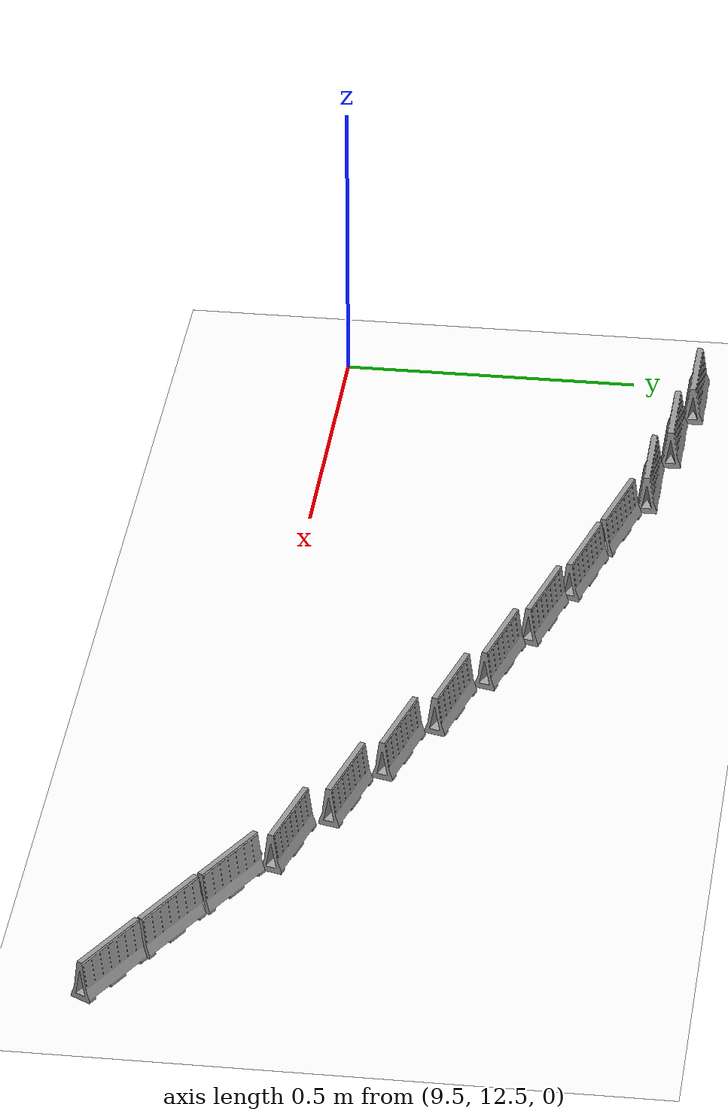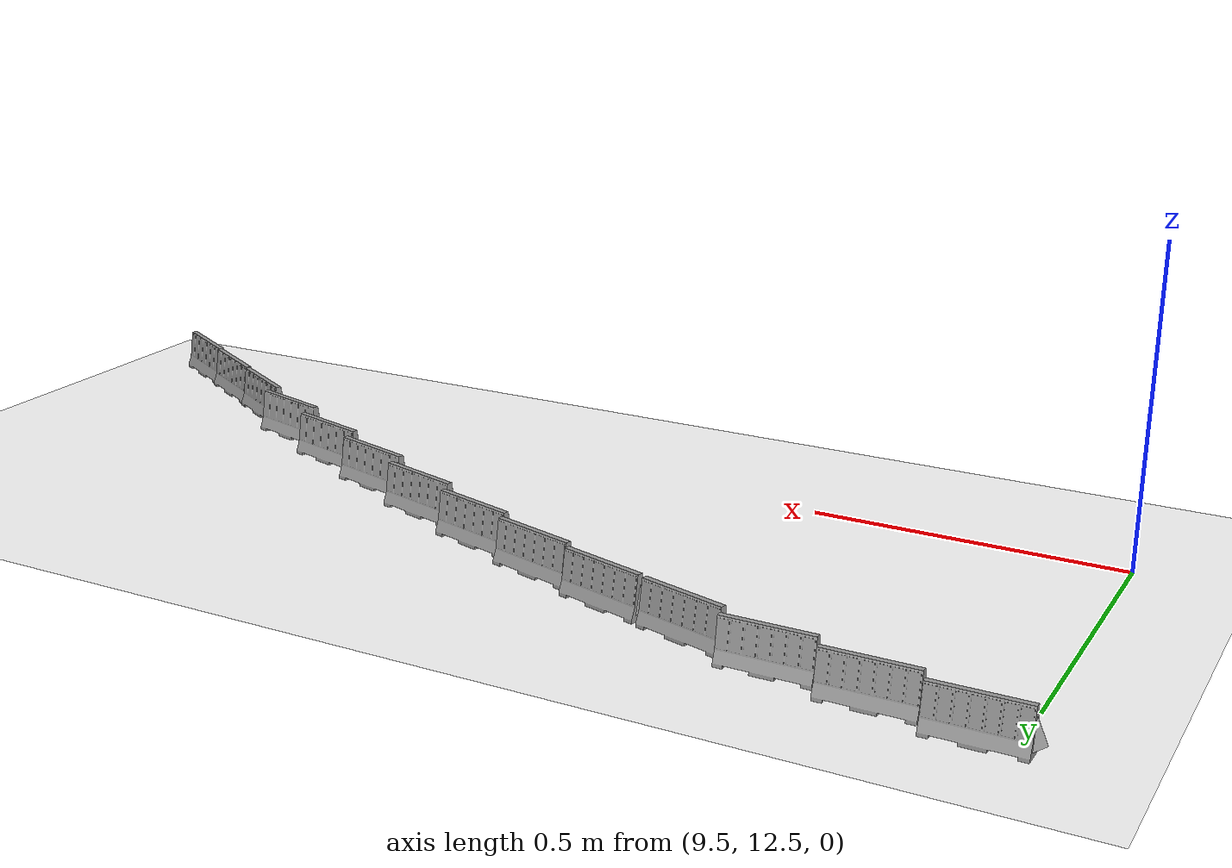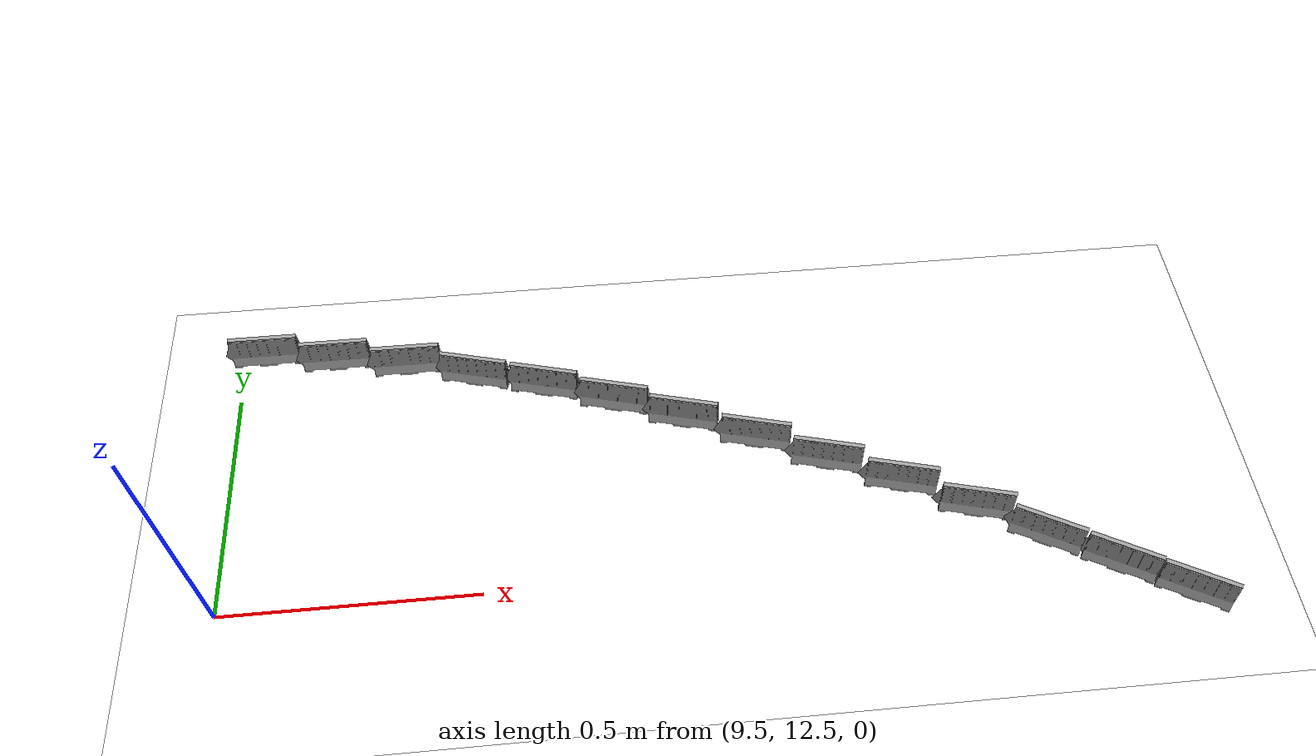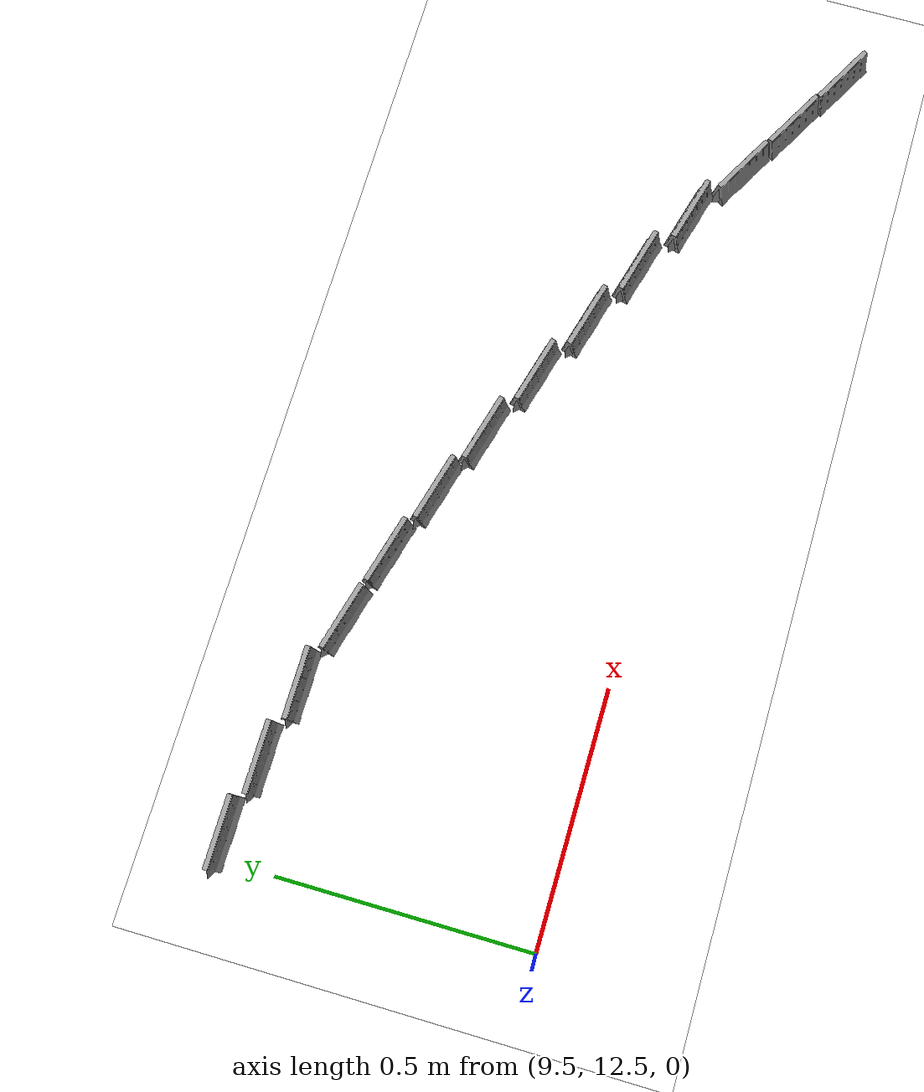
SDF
<sdf version="1.7">
 <world name="bfmc_official">
  <model name="track">
   <static>1</static>
   <link name="link">
    <collision name="collision">
     <geometry><plane><normal>0 0 1</normal><size>22.6166 15</size></plane></geometry>
     <surface>
      <contact><collide_bitmask>65535</collide_bitmask></contact>
      <friction><ode><mu>1</mu><mu2>1</mu2></ode></friction>
     </surface>
    </collision>
    <visual name="visual">
     <geometry><plane><normal>0 0 1</normal><size>22.6166 15</size></plane></geometry>
     <material>
      <ambient>1 1 1 1</ambient>
      <diffuse>1 1 1 1</diffuse>
      <specular>0 0 0 0</specular>
      <emissive>1 1 1 1</emissive>
      <script>
       <uri>model://track/materials/scripts</uri>
       <uri>model://track/materials/textures</uri>
       <name>BFMC_MATERIAL</name>
      </script>
     </material>
    </visual>
   </link>
   <pose>11.31 7.5 0 0 -0 0</pose>
  </model>
  <model name="separator_clone_14">
   <link name="link_0">
    <visual name="visual">
     <geometry><mesh><uri>model://separator/meshes/separator.dae</uri><scale>1 1 1</scale></mesh></geometry>
     <material>
      <lighting>1</lighting>
      <script><uri>file://media/materials/scripts/gazebo.material</uri><name>Gazebo/Gray</name></script>
      <shader type="vertex"><normal_map>__default__</normal_map></shader>
      <ambient>0.3 0.3 0.3 1</ambient>
      <diffuse>0.7 0.7 0.7 1</diffuse>
      <specular>0.01 0.01 0.01 1</specular>
      <emissive>0 0 0 1</emissive>
     </material>
    </visual>
   </link>
   <static>1</static>
   <pose>9.54946 13.1131 0.044594 0 0 -1.57267</pose>
  </model>
  <model name="separator_clone_15">
   <link name="link_0">
    <visual name="visual">
     <geometry><mesh><uri>model://separator/meshes/separator.dae</uri><scale>1 1 1</scale></mesh></geometry>
     <material>
      <lighting>1</lighting>
      <script><uri>file://media/materials/scripts/gazebo.material</uri><name>Gazebo/Gray</name></script>
      <shader type="vertex"><normal_map>__default__</normal_map></shader>
      <ambient>0.3 0.3 0.3 1</ambient>
      <diffuse>0.7 0.7 0.7 1</diffuse>
      <specular>0.01 0.01 0.01 1</specular>
      <emissive>0 0 0 1</emissive>
     </material>
    </visual>
   </link>
   <static>1</static>
   <pose>9.69693 13.0879 0.044594 0 0 -1.57267</pose>
  </model>
  <model name="separator_clone_16">
   <link name="link_0">
    <visual name="visual">
     <geometry><mesh><uri>model://separator/meshes/separator.dae</uri><scale>1 1 1</scale></mesh></geometry>
     <material>
      <lighting>1</lighting>
      <script><uri>file://media/materials/scripts/gazebo.material</uri><name>Gazebo/Gray</name></script>
      <shader type="vertex"><normal_map>__default__</normal_map></shader>
      <ambient>0.3 0.3 0.3 1</ambient>
      <diffuse>0.7 0.7 0.7 1</diffuse>
      <specular>0.01 0.01 0.01 1</specular>
      <emissive>0 0 0 1</emissive>
     </material>
    </visual>
   </link>
   <static>1</static>
   <pose>9.8462 13.0609 0.044594 0 0 -1.57267</pose>
  </model>
  <model name="separator_clone_16_clone">
   <link name="link_0">
    <visual name="visual">
     <geometry><mesh><uri>model://separator/meshes/separator.dae</uri><scale>1 1 1</scale></mesh></geometry>
     <material>
      <lighting>1</lighting>
      <script><uri>file://media/materials/scripts/gazebo.material</uri><name>Gazebo/Gray</name></script>
      <shader type="vertex"><normal_map>__default__</normal_map></shader>
      <ambient>0.3 0.3 0.3 1</ambient>
      <diffuse>0.7 0.7 0.7 1</diffuse>
      <specular>0.01 0.01 0.01 1</specular>
      <emissive>0 0 0 1</emissive>
     </material>
    </visual>
   </link>
   <static>1</static>
   <pose>9.98759 13.0186 0.044594 0 0 -1.83176</pose>
  </model>
  <model name="separator_clone_16_clone_0">
   <link name="link_0">
    <visual name="visual">
     <geometry><mesh><uri>model://separator/meshes/separator.dae</uri><scale>1 1 1</scale></mesh></geometry>
     <material>
      <lighting>1</lighting>
      <script><uri>file://media/materials/scripts/gazebo.material</uri><name>Gazebo/Gray</name></script>
      <shader type="vertex"><normal_map>__default__</normal_map></shader>
      <ambient>0.3 0.3 0.3 1</ambient>
      <diffuse>0.7 0.7 0.7 1</diffuse>
      <specular>0.01 0.01 0.01 1</specular>
      <emissive>0 0 0 1</emissive>
     </material>
    </visual>
   </link>
   <static>1</static>
   <pose>10.132 12.9769 0.044594 0 0 -1.83176</pose>
  </model>
  <model name="separator_clone_16_clone_1">
   <link name="link_0">
    <visual name="visual">
     <geometry><mesh><uri>model://separator/meshes/separator.dae</uri><scale>1 1 1</scale></mesh></geometry>
     <material>
      <lighting>1</lighting>
      <script><uri>file://media/materials/scripts/gazebo.material</uri><name>Gazebo/Gray</name></script>
      <shader type="vertex"><normal_map>__default__</normal_map></shader>
      <ambient>0.3 0.3 0.3 1</ambient>
      <diffuse>0.7 0.7 0.7 1</diffuse>
      <specular>0.01 0.01 0.01 1</specular>
      <emissive>0 0 0 1</emissive>
     </material>
    </visual>
   </link>
   <static>1</static>
   <pose>10.2738 12.9242 0.044594 0 0 -1.83176</pose>
  </model>
  <model name="separator_clone_16_clone_2">
   <link name="link_0">
    <visual name="visual">
     <geometry><mesh><uri>model://separator/meshes/separator.dae</uri><scale>1 1 1</scale></mesh></geometry>
     <material>
      <lighting>1</lighting>
      <script><uri>file://media/materials/scripts/gazebo.material</uri><name>Gazebo/Gray</name></script>
      <shader type="vertex"><normal_map>__default__</normal_map></shader>
      <ambient>0.3 0.3 0.3 1</ambient>
      <diffuse>0.7 0.7 0.7 1</diffuse>
      <specular>0.01 0.01 0.01 1</specular>
      <emissive>0 0 0 1</emissive>
     </material>
    </visual>
   </link>
   <static>1</static>
   <pose>10.4115 12.8681 0.044594 0 0 -1.83176</pose>
  </model>
  <model name="separator_clone_16_clone_3">
   <link name="link_0">
    <visual name="visual">
     <geometry><mesh><uri>model://separator/meshes/separator.dae</uri><scale>1 1 1</scale></mesh></geometry>
     <material>
      <lighting>1</lighting>
      <script><uri>file://media/materials/scripts/gazebo.material</uri><name>Gazebo/Gray</name></script>
      <shader type="vertex"><normal_map>__default__</normal_map></shader>
      <ambient>0.3 0.3 0.3 1</ambient>
      <diffuse>0.7 0.7 0.7 1</diffuse>
      <specular>0.01 0.01 0.01 1</specular>
      <emissive>0 0 0 1</emissive>
     </material>
    </visual>
   </link>
   <static>1</static>
   <pose>10.5519 12.8042 0.044594 0 0 -1.83176</pose>
  </model>
  <model name="separator_clone_16_clone_4">
   <link name="link_0">
    <visual name="visual">
     <geometry><mesh><uri>model://separator/meshes/separator.dae</uri><scale>1 1 1</scale></mesh></geometry>
     <material>
      <lighting>1</lighting>
      <script><uri>file://media/materials/scripts/gazebo.material</uri><name>Gazebo/Gray</name></script>
      <shader type="vertex"><normal_map>__default__</normal_map></shader>
      <ambient>0.3 0.3 0.3 1</ambient>
      <diffuse>0.7 0.7 0.7 1</diffuse>
      <specular>0.01 0.01 0.01 1</specular>
      <emissive>0 0 0 1</emissive>
     </material>
    </visual>
   </link>
   <static>1</static>
   <pose>10.6876 12.737 0.044594 0 0 -1.83176</pose>
  </model>
  <model name="separator_clone_16_clone_5">
   <link name="link_0">
    <visual name="visual">
     <geometry><mesh><uri>model://separator/meshes/separator.dae</uri><scale>1 1 1</scale></mesh></geometry>
     <material>
      <lighting>1</lighting>
      <script><uri>file://media/materials/scripts/gazebo.material</uri><name>Gazebo/Gray</name></script>
      <shader type="vertex"><normal_map>__default__</normal_map></shader>
      <ambient>0.3 0.3 0.3 1</ambient>
      <diffuse>0.7 0.7 0.7 1</diffuse>
      <specular>0.01 0.01 0.01 1</specular>
      <emissive>0 0 0 1</emissive>
     </material>
    </visual>
   </link>
   <static>1</static>
   <pose>10.8256 12.6705 0.044594 0 0 -1.83176</pose>
  </model>
  <model name="separator_clone_16_clone_6">
   <link name="link_0">
    <visual name="visual">
     <geometry><mesh><uri>model://separator/meshes/separator.dae</uri><scale>1 1 1</scale></mesh></geometry>
     <material>
      <lighting>1</lighting>
      <script><uri>file://media/materials/scripts/gazebo.material</uri><name>Gazebo/Gray</name></script>
      <shader type="vertex"><normal_map>__default__</normal_map></shader>
      <ambient>0.3 0.3 0.3 1</ambient>
      <diffuse>0.7 0.7 0.7 1</diffuse>
      <specular>0.01 0.01 0.01 1</specular>
      <emissive>0 0 0 1</emissive>
     </material>
    </visual>
   </link>
   <static>1</static>
   <pose>10.9601 12.5984 0.044594 0 0 -1.83176</pose>
  </model>
  <model name="separator_clone_16_clone_6_clone">
   <link name="link_0">
    <visual name="visual">
     <geometry><mesh><uri>model://separator/meshes/separator.dae</uri><scale>1 1 1</scale></mesh></geometry>
     <material>
      <lighting>1</lighting>
      <script><uri>file://media/materials/scripts/gazebo.material</uri><name>Gazebo/Gray</name></script>
      <shader type="vertex"><normal_map>__default__</normal_map></shader>
      <ambient>0.3 0.3 0.3 1</ambient>
      <diffuse>0.7 0.7 0.7 1</diffuse>
      <specular>0.01 0.01 0.01 1</specular>
      <emissive>0 0 0 1</emissive>
     </material>
    </visual>
   </link>
   <static>1</static>
   <pose>11.0816 12.5216 0.044594 0 0 -2.07717</pose>
  </model>
  <model name="separator_clone_16_clone_6_clone_0">
   <link name="link_0">
    <visual name="visual">
     <geometry><mesh><uri>model://separator/meshes/separator.dae</uri><scale>1 1 1</scale></mesh></geometry>
     <material>
      <lighting>1</lighting>
      <script><uri>file://media/materials/scripts/gazebo.material</uri><name>Gazebo/Gray</name></script>
      <shader type="vertex"><normal_map>__default__</normal_map></shader>
      <ambient>0.3 0.3 0.3 1</ambient>
      <diffuse>0.7 0.7 0.7 1</diffuse>
      <specular>0.01 0.01 0.01 1</specular>
      <emissive>0 0 0 1</emissive>
     </material>
    </visual>
   </link>
   <static>1</static>
   <pose>11.2072 12.4483 0.044594 0 0 -2.07717</pose>
  </model>
  <model name="separator_clone_16_clone_6_clone_1">
   <link name="link_0">
    <visual name="visual">
     <geometry><mesh><uri>model://separator/meshes/separator.dae</uri><scale>1 1 1</scale></mesh></geometry>
     <material>
      <lighting>1</lighting>
      <script><uri>file://media/materials/scripts/gazebo.material</uri><name>Gazebo/Gray</name></script>
      <shader type="vertex"><normal_map>__default__</normal_map></shader>
      <ambient>0.3 0.3 0.3 1</ambient>
      <diffuse>0.7 0.7 0.7 1</diffuse>
      <specular>0.01 0.01 0.01 1</specular>
      <emissive>0 0 0 1</emissive>
     </material>
    </visual>
   </link>
   <static>1</static>
   <pose>11.3302 12.3764 0.044594 0 0 -2.07717</pose>
  </model>
 </world>
</sdf>
